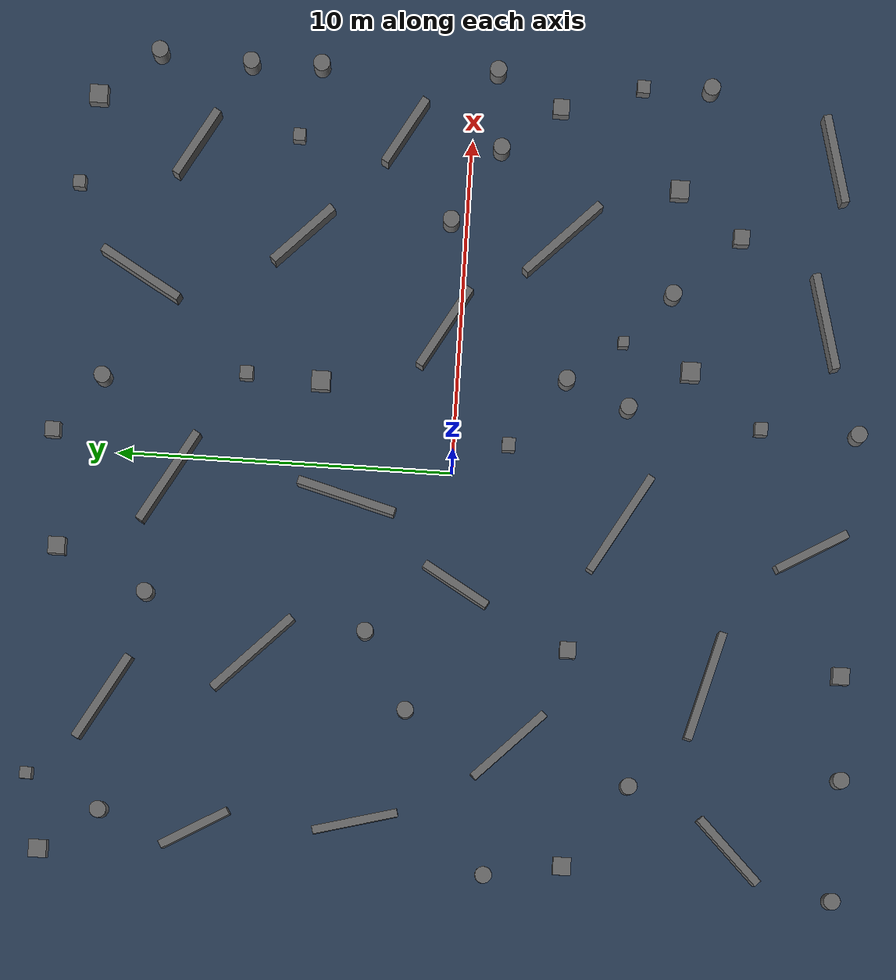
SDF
<?xml version="1.0"?>
<sdf version="1.6">
  <world name="ground">
    <include>
      <uri>model://sun</uri>
    </include>

    <!-- Original 25 m x 25 m field with a sparser layout. Surface clearance
         is at least 1.5 m; spawn X/Y in [-1.0, 1.0]
         stays clear. Platforms are 1 m high. -->
    <model name="ground_arena">
      <static>true</static>
      <link name="floor">
        <pose>0 0 -0.05 0 0 0</pose>
        <inertial><mass>1</mass></inertial>
        <collision name="collision">
          <geometry><box><size>100 100 0.1</size></box></geometry>
        </collision>
        <visual name="visual">
          <geometry><box><size>100 100 0.1</size></box></geometry>
          <material>
            <ambient>0.16 0.24 0.34 1</ambient>
            <diffuse>0.16 0.24 0.34 1</diffuse>
          </material>
        </visual>
      </link>

      <link name="maze_wall_01">
        <pose>-8.002754 -2.164485 0.750000 0 0 2.356196</pose>
        <inertial><mass>1</mass></inertial>
        <collision name="collision">
          <geometry><box><size>2.830000 0.240000 1.500000</size></box></geometry>
        </collision>
        <visual name="visual">
          <geometry><box><size>2.830000 0.240000 1.500000</size></box></geometry>
          <material>
            <ambient>0.42 0.42 0.42 1</ambient>
            <diffuse>0.42 0.42 0.42 1</diffuse>
            <specular>0.15 0.15 0.15 1</specular>
          </material>
        </visual>
      </link>
      <link name="maze_wall_02">
        <pose>-0.934785 3.088702 0.750000 0 0 1.308997</pose>
        <inertial><mass>1</mass></inertial>
        <collision name="collision">
          <geometry><box><size>3.020000 0.240000 1.500000</size></box></geometry>
        </collision>
        <visual name="visual">
          <geometry><box><size>3.020000 0.240000 1.500000</size></box></geometry>
          <material>
            <ambient>0.42 0.42 0.42 1</ambient>
            <diffuse>0.42 0.42 0.42 1</diffuse>
            <specular>0.15 0.15 0.15 1</specular>
          </material>
        </visual>
      </link>
      <link name="maze_wall_03">
        <pose>-1.253402 -5.074368 0.750000 0 0 2.617994</pose>
        <inertial><mass>1</mass></inertial>
        <collision name="collision">
          <geometry><box><size>3.340000 0.240000 1.500000</size></box></geometry>
        </collision>
        <visual name="visual">
          <geometry><box><size>3.340000 0.240000 1.500000</size></box></geometry>
          <material>
            <ambient>0.42 0.42 0.42 1</ambient>
            <diffuse>0.42 0.42 0.42 1</diffuse>
            <specular>0.15 0.15 0.15 1</specular>
          </material>
        </visual>
      </link>
      <link name="maze_wall_04">
        <pose>9.322397 8.192463 0.750000 0 0 2.617994</pose>
        <inertial><mass>1</mass></inertial>
        <collision name="collision">
          <geometry><box><size>2.270000 0.240000 1.500000</size></box></geometry>
        </collision>
        <visual name="visual">
          <geometry><box><size>2.270000 0.240000 1.500000</size></box></geometry>
          <material>
            <ambient>0.42 0.42 0.42 1</ambient>
            <diffuse>0.42 0.42 0.42 1</diffuse>
            <specular>0.15 0.15 0.15 1</specular>
          </material>
        </visual>
      </link>
      <link name="maze_wall_05">
        <pose>-0.665660 8.395972 0.750000 0 0 2.617994</pose>
        <inertial><mass>1</mass></inertial>
        <collision name="collision">
          <geometry><box><size>3.120000 0.240000 1.500000</size></box></geometry>
        </collision>
        <visual name="visual">
          <geometry><box><size>3.120000 0.240000 1.500000</size></box></geometry>
          <material>
            <ambient>0.42 0.42 0.42 1</ambient>
            <diffuse>0.42 0.42 0.42 1</diffuse>
            <specular>0.15 0.15 0.15 1</specular>
          </material>
        </visual>
      </link>
      <link name="maze_wall_06">
        <pose>-3.350257 -0.314220 0.750000 0 0 1.047198</pose>
        <inertial><mass>1</mass></inertial>
        <collision name="collision">
          <geometry><box><size>2.220000 0.240000 1.500000</size></box></geometry>
        </collision>
        <visual name="visual">
          <geometry><box><size>2.220000 0.240000 1.500000</size></box></geometry>
          <material>
            <ambient>0.42 0.42 0.42 1</ambient>
            <diffuse>0.42 0.42 0.42 1</diffuse>
            <specular>0.15 0.15 0.15 1</specular>
          </material>
        </visual>
      </link>
      <link name="maze_wall_07">
        <pose>-5.725737 5.576264 0.750000 0 0 2.356196</pose>
        <inertial><mass>1</mass></inertial>
        <collision name="collision">
          <geometry><box><size>3.150000 0.240000 1.500000</size></box></geometry>
        </collision>
        <visual name="visual">
          <geometry><box><size>3.150000 0.240000 1.500000</size></box></geometry>
          <material>
            <ambient>0.42 0.42 0.42 1</ambient>
            <diffuse>0.42 0.42 0.42 1</diffuse>
            <specular>0.15 0.15 0.15 1</specular>
          </material>
        </visual>
      </link>
      <link name="maze_wall_08">
        <pose>4.268135 0.488885 0.750000 0 0 2.617994</pose>
        <inertial><mass>1</mass></inertial>
        <collision name="collision">
          <geometry><box><size>2.740000 0.240000 1.500000</size></box></geometry>
        </collision>
        <visual name="visual">
          <geometry><box><size>2.740000 0.240000 1.500000</size></box></geometry>
          <material>
            <ambient>0.42 0.42 0.42 1</ambient>
            <diffuse>0.42 0.42 0.42 1</diffuse>
            <specular>0.15 0.15 0.15 1</specular>
          </material>
        </visual>
      </link>
      <link name="maze_wall_09">
        <pose>5.321534 9.598098 0.750000 0 0 1.047198</pose>
        <inertial><mass>1</mass></inertial>
        <collision name="collision">
          <geometry><box><size>2.710000 0.240000 1.500000</size></box></geometry>
        </collision>
        <visual name="visual">
          <geometry><box><size>2.710000 0.240000 1.500000</size></box></geometry>
          <material>
            <ambient>0.42 0.42 0.42 1</ambient>
            <diffuse>0.42 0.42 0.42 1</diffuse>
            <specular>0.15 0.15 0.15 1</specular>
          </material>
        </visual>
      </link>
      <link name="maze_wall_10">
        <pose>9.978798 -10.823324 0.750000 0 0 0.261799</pose>
        <inertial><mass>1</mass></inertial>
        <collision name="collision">
          <geometry><box><size>2.670000 0.240000 1.500000</size></box></geometry>
        </collision>
        <visual name="visual">
          <geometry><box><size>2.670000 0.240000 1.500000</size></box></geometry>
          <material>
            <ambient>0.42 0.42 0.42 1</ambient>
            <diffuse>0.42 0.42 0.42 1</diffuse>
            <specular>0.15 0.15 0.15 1</specular>
          </material>
        </visual>
      </link>
      <link name="maze_wall_11">
        <pose>-5.892469 -7.865181 0.750000 0 0 2.879794</pose>
        <inertial><mass>1</mass></inertial>
        <collision name="collision">
          <geometry><box><size>3.320000 0.240000 1.500000</size></box></geometry>
        </collision>
        <visual name="visual">
          <geometry><box><size>3.320000 0.240000 1.500000</size></box></geometry>
          <material>
            <ambient>0.42 0.42 0.42 1</ambient>
            <diffuse>0.42 0.42 0.42 1</diffuse>
            <specular>0.15 0.15 0.15 1</specular>
          </material>
        </visual>
      </link>
      <link name="maze_wall_12">
        <pose>-10.996733 6.957504 0.750000 0 0 2.094395</pose>
        <inertial><mass>1</mass></inertial>
        <collision name="collision">
          <geometry><box><size>2.240000 0.240000 1.500000</size></box></geometry>
        </collision>
        <visual name="visual">
          <geometry><box><size>2.240000 0.240000 1.500000</size></box></geometry>
          <material>
            <ambient>0.42 0.42 0.42 1</ambient>
            <diffuse>0.42 0.42 0.42 1</diffuse>
            <specular>0.15 0.15 0.15 1</specular>
          </material>
        </visual>
      </link>
      <link name="maze_wall_13">
        <pose>6.777890 4.871578 0.750000 0 0 2.356196</pose>
        <inertial><mass>1</mass></inertial>
        <collision name="collision">
          <geometry><box><size>2.380000 0.240000 1.500000</size></box></geometry>
        </collision>
        <visual name="visual">
          <geometry><box><size>2.380000 0.240000 1.500000</size></box></geometry>
          <material>
            <ambient>0.42 0.42 0.42 1</ambient>
            <diffuse>0.42 0.42 0.42 1</diffuse>
            <specular>0.15 0.15 0.15 1</specular>
          </material>
        </visual>
      </link>
      <link name="maze_wall_14">
        <pose>-1.729035 -10.778752 0.750000 0 0 2.094395</pose>
        <inertial><mass>1</mass></inertial>
        <collision name="collision">
          <geometry><box><size>2.350000 0.240000 1.500000</size></box></geometry>
        </collision>
        <visual name="visual">
          <geometry><box><size>2.350000 0.240000 1.500000</size></box></geometry>
          <material>
            <ambient>0.42 0.42 0.42 1</ambient>
            <diffuse>0.42 0.42 0.42 1</diffuse>
            <specular>0.15 0.15 0.15 1</specular>
          </material>
        </visual>
      </link>
      <link name="maze_wall_15">
        <pose>7.132028 -2.846065 0.750000 0 0 2.356196</pose>
        <inertial><mass>1</mass></inertial>
        <collision name="collision">
          <geometry><box><size>3.000000 0.240000 1.500000</size></box></geometry>
        </collision>
        <visual name="visual">
          <geometry><box><size>3.000000 0.240000 1.500000</size></box></geometry>
          <material>
            <ambient>0.42 0.42 0.42 1</ambient>
            <diffuse>0.42 0.42 0.42 1</diffuse>
            <specular>0.15 0.15 0.15 1</specular>
          </material>
        </visual>
      </link>
      <link name="maze_wall_16">
        <pose>10.045567 2.013541 0.750000 0 0 2.617994</pose>
        <inertial><mass>1</mass></inertial>
        <collision name="collision">
          <geometry><box><size>2.250000 0.240000 1.500000</size></box></geometry>
        </collision>
        <visual name="visual">
          <geometry><box><size>2.250000 0.240000 1.500000</size></box></geometry>
          <material>
            <ambient>0.42 0.42 0.42 1</ambient>
            <diffuse>0.42 0.42 0.42 1</diffuse>
            <specular>0.15 0.15 0.15 1</specular>
          </material>
        </visual>
      </link>
      <link name="maze_wall_17">
        <pose>-10.518603 2.233506 0.750000 0 0 1.832596</pose>
        <inertial><mass>1</mass></inertial>
        <collision name="collision">
          <geometry><box><size>2.560000 0.240000 1.500000</size></box></geometry>
        </collision>
        <visual name="visual">
          <geometry><box><size>2.560000 0.240000 1.500000</size></box></geometry>
          <material>
            <ambient>0.42 0.42 0.42 1</ambient>
            <diffuse>0.42 0.42 0.42 1</diffuse>
            <specular>0.15 0.15 0.15 1</specular>
          </material>
        </visual>
      </link>
      <link name="maze_wall_18">
        <pose>-10.715638 -8.830295 0.750000 0 0 0.785397</pose>
        <inertial><mass>1</mass></inertial>
        <collision name="collision">
          <geometry><box><size>2.560000 0.240000 1.500000</size></box></geometry>
        </collision>
        <visual name="visual">
          <geometry><box><size>2.560000 0.240000 1.500000</size></box></geometry>
          <material>
            <ambient>0.42 0.42 0.42 1</ambient>
            <diffuse>0.42 0.42 0.42 1</diffuse>
            <specular>0.15 0.15 0.15 1</specular>
          </material>
        </visual>
      </link>
      <link name="maze_wall_19">
        <pose>5.118076 -10.799826 0.750000 0 0 0.261799</pose>
        <inertial><mass>1</mass></inertial>
        <collision name="collision">
          <geometry><box><size>2.890000 0.240000 1.500000</size></box></geometry>
        </collision>
        <visual name="visual">
          <geometry><box><size>2.890000 0.240000 1.500000</size></box></geometry>
          <material>
            <ambient>0.42 0.42 0.42 1</ambient>
            <diffuse>0.42 0.42 0.42 1</diffuse>
            <specular>0.15 0.15 0.15 1</specular>
          </material>
        </visual>
      </link>
      <link name="maze_wall_20">
        <pose>-7.292603 9.918312 0.750000 0 0 2.617994</pose>
        <inertial><mass>1</mass></inertial>
        <collision name="collision">
          <geometry><box><size>2.890000 0.240000 1.500000</size></box></geometry>
        </collision>
        <visual name="visual">
          <geometry><box><size>2.890000 0.240000 1.500000</size></box></geometry>
          <material>
            <ambient>0.42 0.42 0.42 1</ambient>
            <diffuse>0.42 0.42 0.42 1</diffuse>
            <specular>0.15 0.15 0.15 1</specular>
          </material>
        </visual>
      </link>
      <link name="random_cylinder_01">
        <pose>5.672616 -6.228565 0.750000 0 0 0</pose>
        <inertial><mass>1</mass></inertial>
        <collision name="collision">
          <geometry><cylinder><radius>0.250000</radius><length>1.500000</length></cylinder></geometry>
        </collision>
        <visual name="visual">
          <geometry><cylinder><radius>0.250000</radius><length>1.500000</length></cylinder></geometry>
          <material>
            <ambient>0.42 0.42 0.42 1</ambient>
            <diffuse>0.42 0.42 0.42 1</diffuse>
            <specular>0.15 0.15 0.15 1</specular>
          </material>
        </visual>
      </link>
      <link name="random_cylinder_02">
        <pose>-7.146008 0.953489 0.750000 0 0 0</pose>
        <inertial><mass>1</mass></inertial>
        <collision name="collision">
          <geometry><cylinder><radius>0.250000</radius><length>1.500000</length></cylinder></geometry>
        </collision>
        <visual name="visual">
          <geometry><cylinder><radius>0.250000</radius><length>1.500000</length></cylinder></geometry>
          <material>
            <ambient>0.42 0.42 0.42 1</ambient>
            <diffuse>0.42 0.42 0.42 1</diffuse>
            <specular>0.15 0.15 0.15 1</specular>
          </material>
        </visual>
      </link>
      <link name="random_cylinder_03">
        <pose>1.813605 -11.962392 0.750000 0 0 0</pose>
        <inertial><mass>1</mass></inertial>
        <collision name="collision">
          <geometry><cylinder><radius>0.250000</radius><length>1.500000</length></cylinder></geometry>
        </collision>
        <visual name="visual">
          <geometry><cylinder><radius>0.250000</radius><length>1.500000</length></cylinder></geometry>
          <material>
            <ambient>0.42 0.42 0.42 1</ambient>
            <diffuse>0.42 0.42 0.42 1</diffuse>
            <specular>0.15 0.15 0.15 1</specular>
          </material>
        </visual>
      </link>
      <link name="random_cylinder_04">
        <pose>11.884526 -7.014955 0.750000 0 0 0</pose>
        <inertial><mass>1</mass></inertial>
        <collision name="collision">
          <geometry><cylinder><radius>0.250000</radius><length>1.500000</length></cylinder></geometry>
        </collision>
        <visual name="visual">
          <geometry><cylinder><radius>0.250000</radius><length>1.500000</length></cylinder></geometry>
          <material>
            <ambient>0.42 0.42 0.42 1</ambient>
            <diffuse>0.42 0.42 0.42 1</diffuse>
            <specular>0.15 0.15 0.15 1</specular>
          </material>
        </visual>
      </link>
      <link name="random_cylinder_05">
        <pose>2.946977 -3.227087 0.750000 0 0 0</pose>
        <inertial><mass>1</mass></inertial>
        <collision name="collision">
          <geometry><cylinder><radius>0.250000</radius><length>1.500000</length></cylinder></geometry>
        </collision>
        <visual name="visual">
          <geometry><cylinder><radius>0.250000</radius><length>1.500000</length></cylinder></geometry>
          <material>
            <ambient>0.42 0.42 0.42 1</ambient>
            <diffuse>0.42 0.42 0.42 1</diffuse>
            <specular>0.15 0.15 0.15 1</specular>
          </material>
        </visual>
      </link>
      <link name="random_cylinder_06">
        <pose>-8.990001 -5.771880 0.750000 0 0 0</pose>
        <inertial><mass>1</mass></inertial>
        <collision name="collision">
          <geometry><cylinder><radius>0.250000</radius><length>1.500000</length></cylinder></geometry>
        </collision>
        <visual name="visual">
          <geometry><cylinder><radius>0.250000</radius><length>1.500000</length></cylinder></geometry>
          <material>
            <ambient>0.42 0.42 0.42 1</ambient>
            <diffuse>0.42 0.42 0.42 1</diffuse>
            <specular>0.15 0.15 0.15 1</specular>
          </material>
        </visual>
      </link>
      <link name="random_cylinder_07">
        <pose>12.034153 -0.632277 0.750000 0 0 0</pose>
        <inertial><mass>1</mass></inertial>
        <collision name="collision">
          <geometry><cylinder><radius>0.250000</radius><length>1.500000</length></cylinder></geometry>
        </collision>
        <visual name="visual">
          <geometry><cylinder><radius>0.250000</radius><length>1.500000</length></cylinder></geometry>
          <material>
            <ambient>0.42 0.42 0.42 1</ambient>
            <diffuse>0.42 0.42 0.42 1</diffuse>
            <specular>0.15 0.15 0.15 1</specular>
          </material>
        </visual>
      </link>
      <link name="random_cylinder_08">
        <pose>-8.432579 -12.010552 0.750000 0 0 0</pose>
        <inertial><mass>1</mass></inertial>
        <collision name="collision">
          <geometry><cylinder><radius>0.250000</radius><length>1.500000</length></cylinder></geometry>
        </collision>
        <visual name="visual">
          <geometry><cylinder><radius>0.250000</radius><length>1.500000</length></cylinder></geometry>
          <material>
            <ambient>0.42 0.42 0.42 1</ambient>
            <diffuse>0.42 0.42 0.42 1</diffuse>
            <specular>0.15 0.15 0.15 1</specular>
          </material>
        </visual>
      </link>
      <link name="random_cylinder_09">
        <pose>-4.124157 8.861503 0.750000 0 0 0</pose>
        <inertial><mass>1</mass></inertial>
        <collision name="collision">
          <geometry><cylinder><radius>0.250000</radius><length>1.500000</length></cylinder></geometry>
        </collision>
        <visual name="visual">
          <geometry><cylinder><radius>0.250000</radius><length>1.500000</length></cylinder></geometry>
          <material>
            <ambient>0.42 0.42 0.42 1</ambient>
            <diffuse>0.42 0.42 0.42 1</diffuse>
            <specular>0.15 0.15 0.15 1</specular>
          </material>
        </visual>
      </link>
      <link name="random_cylinder_10">
        <pose>2.205099 10.537002 0.750000 0 0 0</pose>
        <inertial><mass>1</mass></inertial>
        <collision name="collision">
          <geometry><cylinder><radius>0.250000</radius><length>1.500000</length></cylinder></geometry>
        </collision>
        <visual name="visual">
          <geometry><cylinder><radius>0.250000</radius><length>1.500000</length></cylinder></geometry>
          <material>
            <ambient>0.42 0.42 0.42 1</ambient>
            <diffuse>0.42 0.42 0.42 1</diffuse>
            <specular>0.15 0.15 0.15 1</specular>
          </material>
        </visual>
      </link>
      <link name="random_cylinder_11">
        <pose>-11.857216 -1.648091 0.750000 0 0 0</pose>
        <inertial><mass>1</mass></inertial>
        <collision name="collision">
          <geometry><cylinder><radius>0.250000</radius><length>1.500000</length></cylinder></geometry>
        </collision>
        <visual name="visual">
          <geometry><cylinder><radius>0.250000</radius><length>1.500000</length></cylinder></geometry>
          <material>
            <ambient>0.42 0.42 0.42 1</ambient>
            <diffuse>0.42 0.42 0.42 1</diffuse>
            <specular>0.15 0.15 0.15 1</specular>
          </material>
        </visual>
      </link>
      <link name="random_cylinder_12">
        <pose>-12.005769 -11.943075 0.750000 0 0 0</pose>
        <inertial><mass>1</mass></inertial>
        <collision name="collision">
          <geometry><cylinder><radius>0.250000</radius><length>1.500000</length></cylinder></geometry>
        </collision>
        <visual name="visual">
          <geometry><cylinder><radius>0.250000</radius><length>1.500000</length></cylinder></geometry>
          <material>
            <ambient>0.42 0.42 0.42 1</ambient>
            <diffuse>0.42 0.42 0.42 1</diffuse>
            <specular>0.15 0.15 0.15 1</specular>
          </material>
        </visual>
      </link>
      <link name="random_cylinder_13">
        <pose>11.898950 4.629410 0.750000 0 0 0</pose>
        <inertial><mass>1</mass></inertial>
        <collision name="collision">
          <geometry><cylinder><radius>0.250000</radius><length>1.500000</length></cylinder></geometry>
        </collision>
        <visual name="visual">
          <geometry><cylinder><radius>0.250000</radius><length>1.500000</length></cylinder></geometry>
          <material>
            <ambient>0.42 0.42 0.42 1</ambient>
            <diffuse>0.42 0.42 0.42 1</diffuse>
            <specular>0.15 0.15 0.15 1</specular>
          </material>
        </visual>
      </link>
      <link name="random_cylinder_14">
        <pose>-4.891554 2.287162 0.750000 0 0 0</pose>
        <inertial><mass>1</mass></inertial>
        <collision name="collision">
          <geometry><cylinder><radius>0.250000</radius><length>1.500000</length></cylinder></geometry>
        </collision>
        <visual name="visual">
          <geometry><cylinder><radius>0.250000</radius><length>1.500000</length></cylinder></geometry>
          <material>
            <ambient>0.42 0.42 0.42 1</ambient>
            <diffuse>0.42 0.42 0.42 1</diffuse>
            <specular>0.15 0.15 0.15 1</specular>
          </material>
        </visual>
      </link>
      <link name="random_cylinder_15">
        <pose>2.221076 -5.106159 0.750000 0 0 0</pose>
        <inertial><mass>1</mass></inertial>
        <collision name="collision">
          <geometry><cylinder><radius>0.250000</radius><length>1.500000</length></cylinder></geometry>
        </collision>
        <visual name="visual">
          <geometry><cylinder><radius>0.250000</radius><length>1.500000</length></cylinder></geometry>
          <material>
            <ambient>0.42 0.42 0.42 1</ambient>
            <diffuse>0.42 0.42 0.42 1</diffuse>
            <specular>0.15 0.15 0.15 1</specular>
          </material>
        </visual>
      </link>
      <link name="random_cylinder_16">
        <pose>12.006046 9.462281 0.750000 0 0 0</pose>
        <inertial><mass>1</mass></inertial>
        <collision name="collision">
          <geometry><cylinder><radius>0.250000</radius><length>1.500000</length></cylinder></geometry>
        </collision>
        <visual name="visual">
          <geometry><cylinder><radius>0.250000</radius><length>1.500000</length></cylinder></geometry>
          <material>
            <ambient>0.42 0.42 0.42 1</ambient>
            <diffuse>0.42 0.42 0.42 1</diffuse>
            <specular>0.15 0.15 0.15 1</specular>
          </material>
        </visual>
      </link>
      <link name="random_cylinder_17">
        <pose>11.843537 6.728521 0.750000 0 0 0</pose>
        <inertial><mass>1</mass></inertial>
        <collision name="collision">
          <geometry><cylinder><radius>0.250000</radius><length>1.500000</length></cylinder></geometry>
        </collision>
        <visual name="visual">
          <geometry><cylinder><radius>0.250000</radius><length>1.500000</length></cylinder></geometry>
          <material>
            <ambient>0.42 0.42 0.42 1</ambient>
            <diffuse>0.42 0.42 0.42 1</diffuse>
            <specular>0.15 0.15 0.15 1</specular>
          </material>
        </visual>
      </link>
      <link name="random_cylinder_18">
        <pose>-10.630413 9.815708 0.750000 0 0 0</pose>
        <inertial><mass>1</mass></inertial>
        <collision name="collision">
          <geometry><cylinder><radius>0.250000</radius><length>1.500000</length></cylinder></geometry>
        </collision>
        <visual name="visual">
          <geometry><cylinder><radius>0.250000</radius><length>1.500000</length></cylinder></geometry>
          <material>
            <ambient>0.42 0.42 0.42 1</ambient>
            <diffuse>0.42 0.42 0.42 1</diffuse>
            <specular>0.15 0.15 0.15 1</specular>
          </material>
        </visual>
      </link>
      <link name="random_cylinder_19">
        <pose>9.723992 -0.872083 0.750000 0 0 0</pose>
        <inertial><mass>1</mass></inertial>
        <collision name="collision">
          <geometry><cylinder><radius>0.250000</radius><length>1.500000</length></cylinder></geometry>
        </collision>
        <visual name="visual">
          <geometry><cylinder><radius>0.250000</radius><length>1.500000</length></cylinder></geometry>
          <material>
            <ambient>0.42 0.42 0.42 1</ambient>
            <diffuse>0.42 0.42 0.42 1</diffuse>
            <specular>0.15 0.15 0.15 1</specular>
          </material>
        </visual>
      </link>
      <link name="random_cylinder_20">
        <pose>7.474501 0.492021 0.750000 0 0 0</pose>
        <inertial><mass>1</mass></inertial>
        <collision name="collision">
          <geometry><cylinder><radius>0.250000</radius><length>1.500000</length></cylinder></geometry>
        </collision>
        <visual name="visual">
          <geometry><cylinder><radius>0.250000</radius><length>1.500000</length></cylinder></geometry>
          <material>
            <ambient>0.42 0.42 0.42 1</ambient>
            <diffuse>0.42 0.42 0.42 1</diffuse>
            <specular>0.15 0.15 0.15 1</specular>
          </material>
        </visual>
      </link>
      <link name="random_platform_01">
        <pose>0.925304 -1.620997 0.500000 0 0 0.000000</pose>
        <inertial><mass>1</mass></inertial>
        <collision name="collision">
          <geometry><box><size>0.390000 0.390000 1.000000</size></box></geometry>
        </collision>
        <visual name="visual">
          <geometry><box><size>0.390000 0.390000 1.000000</size></box></geometry>
          <material>
            <ambient>0.42 0.42 0.42 1</ambient>
            <diffuse>0.42 0.42 0.42 1</diffuse>
            <specular>0.15 0.15 0.15 1</specular>
          </material>
        </visual>
      </link>
      <link name="random_platform_02">
        <pose>2.581997 6.292434 0.500000 0 0 0.000000</pose>
        <inertial><mass>1</mass></inertial>
        <collision name="collision">
          <geometry><box><size>0.390000 0.390000 1.000000</size></box></geometry>
        </collision>
        <visual name="visual">
          <geometry><box><size>0.390000 0.390000 1.000000</size></box></geometry>
          <material>
            <ambient>0.42 0.42 0.42 1</ambient>
            <diffuse>0.42 0.42 0.42 1</diffuse>
            <specular>0.15 0.15 0.15 1</specular>
          </material>
        </visual>
      </link>
      <link name="random_platform_03">
        <pose>-5.343664 -11.866216 0.500000 0 0 0.000000</pose>
        <inertial><mass>1</mass></inertial>
        <collision name="collision">
          <geometry><box><size>0.500000 0.500000 1.000000</size></box></geometry>
        </collision>
        <visual name="visual">
          <geometry><box><size>0.500000 0.500000 1.000000</size></box></geometry>
          <material>
            <ambient>0.42 0.42 0.42 1</ambient>
            <diffuse>0.42 0.42 0.42 1</diffuse>
            <specular>0.15 0.15 0.15 1</specular>
          </material>
        </visual>
      </link>
      <link name="random_platform_04">
        <pose>10.626967 11.227550 0.500000 0 0 0.000000</pose>
        <inertial><mass>1</mass></inertial>
        <collision name="collision">
          <geometry><box><size>0.540000 0.540000 1.000000</size></box></geometry>
        </collision>
        <visual name="visual">
          <geometry><box><size>0.540000 0.540000 1.000000</size></box></geometry>
          <material>
            <ambient>0.42 0.42 0.42 1</ambient>
            <diffuse>0.42 0.42 0.42 1</diffuse>
            <specular>0.15 0.15 0.15 1</specular>
          </material>
        </visual>
      </link>
      <link name="random_platform_05">
        <pose>4.186415 -4.846389 0.500000 0 0 0.000000</pose>
        <inertial><mass>1</mass></inertial>
        <collision name="collision">
          <geometry><box><size>0.310000 0.310000 1.000000</size></box></geometry>
        </collision>
        <visual name="visual">
          <geometry><box><size>0.310000 0.310000 1.000000</size></box></geometry>
          <material>
            <ambient>0.42 0.42 0.42 1</ambient>
            <diffuse>0.42 0.42 0.42 1</diffuse>
            <specular>0.15 0.15 0.15 1</specular>
          </material>
        </visual>
      </link>
      <link name="random_platform_06">
        <pose>11.076780 -2.575653 0.500000 0 0 0.000000</pose>
        <inertial><mass>1</mass></inertial>
        <collision name="collision">
          <geometry><box><size>0.480000 0.480000 1.000000</size></box></geometry>
        </collision>
        <visual name="visual">
          <geometry><box><size>0.480000 0.480000 1.000000</size></box></geometry>
          <material>
            <ambient>0.42 0.42 0.42 1</ambient>
            <diffuse>0.42 0.42 0.42 1</diffuse>
            <specular>0.15 0.15 0.15 1</specular>
          </material>
        </visual>
      </link>
      <link name="random_platform_07">
        <pose>-5.065009 -3.742804 0.500000 0 0 0.000000</pose>
        <inertial><mass>1</mass></inertial>
        <collision name="collision">
          <geometry><box><size>0.480000 0.480000 1.000000</size></box></geometry>
        </collision>
        <visual name="visual">
          <geometry><box><size>0.480000 0.480000 1.000000</size></box></geometry>
          <material>
            <ambient>0.42 0.42 0.42 1</ambient>
            <diffuse>0.42 0.42 0.42 1</diffuse>
            <specular>0.15 0.15 0.15 1</specular>
          </material>
        </visual>
      </link>
      <link name="random_platform_08">
        <pose>-2.902291 11.585993 0.500000 0 0 0.000000</pose>
        <inertial><mass>1</mass></inertial>
        <collision name="collision">
          <geometry><box><size>0.500000 0.500000 1.000000</size></box></geometry>
        </collision>
        <visual name="visual">
          <geometry><box><size>0.500000 0.500000 1.000000</size></box></geometry>
          <material>
            <ambient>0.42 0.42 0.42 1</ambient>
            <diffuse>0.42 0.42 0.42 1</diffuse>
            <specular>0.15 0.15 0.15 1</specular>
          </material>
        </visual>
      </link>
      <link name="random_platform_09">
        <pose>1.843163 -9.084276 0.500000 0 0 0.000000</pose>
        <inertial><mass>1</mass></inertial>
        <collision name="collision">
          <geometry><box><size>0.380000 0.380000 1.000000</size></box></geometry>
        </collision>
        <visual name="visual">
          <geometry><box><size>0.380000 0.380000 1.000000</size></box></geometry>
          <material>
            <ambient>0.42 0.42 0.42 1</ambient>
            <diffuse>0.42 0.42 0.42 1</diffuse>
            <specular>0.15 0.15 0.15 1</specular>
          </material>
        </visual>
      </link>
      <link name="random_platform_10">
        <pose>-9.681246 12.047691 0.500000 0 0 0.000000</pose>
        <inertial><mass>1</mass></inertial>
        <collision name="collision">
          <geometry><box><size>0.350000 0.350000 1.000000</size></box></geometry>
        </collision>
        <visual name="visual">
          <geometry><box><size>0.350000 0.350000 1.000000</size></box></geometry>
          <material>
            <ambient>0.42 0.42 0.42 1</ambient>
            <diffuse>0.42 0.42 0.42 1</diffuse>
            <specular>0.15 0.15 0.15 1</specular>
          </material>
        </visual>
      </link>
      <link name="random_platform_11">
        <pose>9.781414 5.173394 0.500000 0 0 0.000000</pose>
        <inertial><mass>1</mass></inertial>
        <collision name="collision">
          <geometry><box><size>0.360000 0.360000 1.000000</size></box></geometry>
        </collision>
        <visual name="visual">
          <geometry><box><size>0.360000 0.360000 1.000000</size></box></geometry>
          <material>
            <ambient>0.42 0.42 0.42 1</ambient>
            <diffuse>0.42 0.42 0.42 1</diffuse>
            <specular>0.15 0.15 0.15 1</specular>
          </material>
        </visual>
      </link>
      <link name="random_platform_12">
        <pose>3.418501 -6.898940 0.500000 0 0 0.000000</pose>
        <inertial><mass>1</mass></inertial>
        <collision name="collision">
          <geometry><box><size>0.550000 0.550000 1.000000</size></box></geometry>
        </collision>
        <visual name="visual">
          <geometry><box><size>0.550000 0.550000 1.000000</size></box></geometry>
          <material>
            <ambient>0.42 0.42 0.42 1</ambient>
            <diffuse>0.42 0.42 0.42 1</diffuse>
            <specular>0.15 0.15 0.15 1</specular>
          </material>
        </visual>
      </link>
      <link name="random_platform_13">
        <pose>-11.458504 -3.948779 0.500000 0 0 0.000000</pose>
        <inertial><mass>1</mass></inertial>
        <collision name="collision">
          <geometry><box><size>0.530000 0.530000 1.000000</size></box></geometry>
        </collision>
        <visual name="visual">
          <geometry><box><size>0.530000 0.530000 1.000000</size></box></geometry>
          <material>
            <ambient>0.42 0.42 0.42 1</ambient>
            <diffuse>0.42 0.42 0.42 1</diffuse>
            <specular>0.15 0.15 0.15 1</specular>
          </material>
        </visual>
      </link>
      <link name="random_platform_14">
        <pose>11.840921 -4.993380 0.500000 0 0 0.000000</pose>
        <inertial><mass>1</mass></inertial>
        <collision name="collision">
          <geometry><box><size>0.380000 0.380000 1.000000</size></box></geometry>
        </collision>
        <visual name="visual">
          <geometry><box><size>0.380000 0.380000 1.000000</size></box></geometry>
          <material>
            <ambient>0.42 0.42 0.42 1</ambient>
            <diffuse>0.42 0.42 0.42 1</diffuse>
            <specular>0.15 0.15 0.15 1</specular>
          </material>
        </visual>
      </link>
      <link name="random_platform_15">
        <pose>-11.889247 11.546915 0.500000 0 0 0.000000</pose>
        <inertial><mass>1</mass></inertial>
        <collision name="collision">
          <geometry><box><size>0.530000 0.530000 1.000000</size></box></geometry>
        </collision>
        <visual name="visual">
          <geometry><box><size>0.530000 0.530000 1.000000</size></box></geometry>
          <material>
            <ambient>0.42 0.42 0.42 1</ambient>
            <diffuse>0.42 0.42 0.42 1</diffuse>
            <specular>0.15 0.15 0.15 1</specular>
          </material>
        </visual>
      </link>
      <link name="random_platform_16">
        <pose>7.517379 -8.175658 0.500000 0 0 0.000000</pose>
        <inertial><mass>1</mass></inertial>
        <collision name="collision">
          <geometry><box><size>0.460000 0.460000 1.000000</size></box></geometry>
        </collision>
        <visual name="visual">
          <geometry><box><size>0.460000 0.460000 1.000000</size></box></geometry>
          <material>
            <ambient>0.42 0.42 0.42 1</ambient>
            <diffuse>0.42 0.42 0.42 1</diffuse>
            <specular>0.15 0.15 0.15 1</specular>
          </material>
        </visual>
      </link>
      <link name="random_platform_17">
        <pose>2.476901 4.069141 0.500000 0 0 0.000000</pose>
        <inertial><mass>1</mass></inertial>
        <collision name="collision">
          <geometry><box><size>0.560000 0.560000 1.000000</size></box></geometry>
        </collision>
        <visual name="visual">
          <geometry><box><size>0.560000 0.560000 1.000000</size></box></geometry>
          <material>
            <ambient>0.42 0.42 0.42 1</ambient>
            <diffuse>0.42 0.42 0.42 1</diffuse>
            <specular>0.15 0.15 0.15 1</specular>
          </material>
        </visual>
      </link>
      <link name="random_platform_18">
        <pose>8.827785 -6.254351 0.500000 0 0 0.000000</pose>
        <inertial><mass>1</mass></inertial>
        <collision name="collision">
          <geometry><box><size>0.540000 0.540000 1.000000</size></box></geometry>
        </collision>
        <visual name="visual">
          <geometry><box><size>0.540000 0.540000 1.000000</size></box></geometry>
          <material>
            <ambient>0.42 0.42 0.42 1</ambient>
            <diffuse>0.42 0.42 0.42 1</diffuse>
            <specular>0.15 0.15 0.15 1</specular>
          </material>
        </visual>
      </link>
      <link name="random_platform_19">
        <pose>0.541180 11.936301 0.500000 0 0 0.000000</pose>
        <inertial><mass>1</mass></inertial>
        <collision name="collision">
          <geometry><box><size>0.440000 0.440000 1.000000</size></box></geometry>
        </collision>
        <visual name="visual">
          <geometry><box><size>0.440000 0.440000 1.000000</size></box></geometry>
          <material>
            <ambient>0.42 0.42 0.42 1</ambient>
            <diffuse>0.42 0.42 0.42 1</diffuse>
            <specular>0.15 0.15 0.15 1</specular>
          </material>
        </visual>
      </link>
      <link name="random_platform_20">
        <pose>7.978510 11.633445 0.500000 0 0 0.000000</pose>
        <inertial><mass>1</mass></inertial>
        <collision name="collision">
          <geometry><box><size>0.360000 0.360000 1.000000</size></box></geometry>
        </collision>
        <visual name="visual">
          <geometry><box><size>0.360000 0.360000 1.000000</size></box></geometry>
          <material>
            <ambient>0.42 0.42 0.42 1</ambient>
            <diffuse>0.42 0.42 0.42 1</diffuse>
            <specular>0.15 0.15 0.15 1</specular>
          </material>
        </visual>
      </link>
    </model>

    <scene>
      <ambient>0.45 0.45 0.45 1</ambient>
      <background>0.15 0.25 0.35 1</background>
      <shadows>true</shadows>
      <grid>false</grid>
    </scene>

    <physics name="dart_500hz" type="dart">
      <max_step_size>0.002</max_step_size>
      <real_time_update_rate>500</real_time_update_rate>
    </physics>

    <gui fullscreen="0">
      <camera name="pm01_camera">
        <pose>16 -16 8 0 0.35 2.4</pose>
        <view_controller>orbit</view_controller>
        <projection_type>perspective</projection_type>
      </camera>
    </gui>
  </world>
</sdf>
